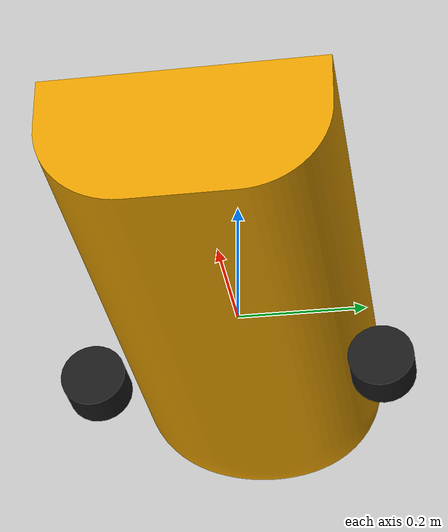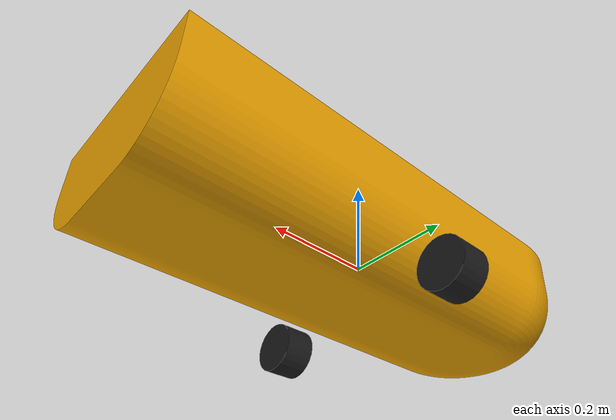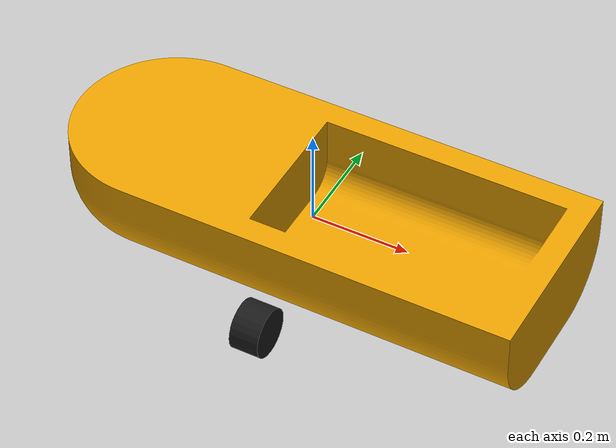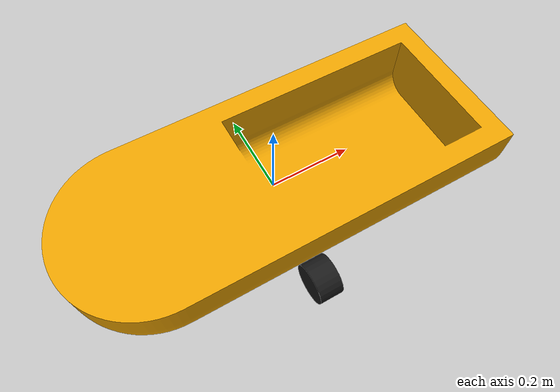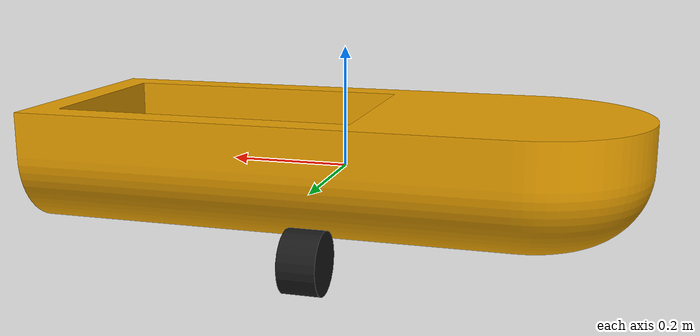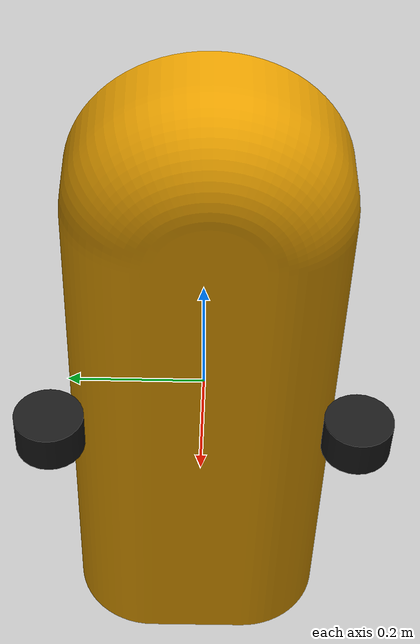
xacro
<?xml version="1.0"?>
<robot name="ele306baat" xmlns:xacro="http://www.ros.org/wiki/xacro">

  <!-- Xacro-parametre (i meter og kg) -->
    <xacro:property name="m" value="30"/>
    <xacro:property name="a" value="1.0"/>  <!-- lengde -->
    <xacro:property name="b" value="0.4"/>  <!-- bredde -->
    <xacro:property name="c" value="0.2"/>  <!-- høyde -->
    <xacro:property name="ox" value="0.5"/>
    <xacro:property name="oy" value="-0.2"/>
    <xacro:property name="oz" value="-0.1"/>
    <xacro:property name="y_off" value="0.22"/>  <!-- avstand sidelengs fra CoM (m) -->
    <xacro:property name="thr_r" value="0.05"/>  <!-- radius på thruster-visual -->
    <xacro:property name="thr_l" value="0.06"/>  <!-- lengde på thruster-visual -->
    <xacro:property name="thr_m" value="0.001"/> <!-- liten masse -->

  <link name="base_link">
    <inertial>
      <origin xyz="0 0 -0.1" rpy="0 0 0"/>
      <mass value="${m}"/>
      <inertia
        ixx="${(1.0/12.0)*m*(b*b + c*c)}"
        iyy="${(1.0/12.0)*m*(a*a + c*c)}"
        izz="${(1.0/12.0)*m*(a*a + b*b)}"
        ixy="0" iyz="0" ixz="0"/>
    </inertial>

    <visual name="base_link_visual">
      <origin xyz="${ox} ${oy} ${oz}" rpy="0 0 0"/>
      <geometry>
        <!-- bruk package:// i ROS 2 -->
        <mesh filename="$(find usv_package)/meshes/base_link.stl" scale="0.001 0.001 0.001"/>
      </geometry>
    </visual>

    <collision name="base_link_collision">
      <origin xyz="${ox} ${oy} ${oz}" rpy="0 0 0"/>
      <geometry>
        <mesh filename="$(find usv_package)/meshes/base_link.stl" scale="0.001 0.001 0.001"/>
      </geometry>
    </collision>
  </link>

  <!-- VENSTRE THRUSTER (y>0) -->
  <link name="thr_left">
    <inertial>
      <origin xyz="0 0 0" rpy="0 0 0"/>
      <mass value="${thr_m}"/>
      <inertia ixx="1e-6" iyy="1e-6" izz="1e-6" ixy="0" ixz="0" iyz="0"/>
    </inertial>
    <visual>
      <!-- URDF-sylinder peker langs z; roter til x -->
      <origin xyz="0 0 0" rpy="0 1.57079632679 0"/>
      <geometry><cylinder radius="${thr_r}" length="${thr_l}"/></geometry>
      <material name="thr_black"><color rgba="0.1 0.1 0.1 1.0"/></material>
    </visual>
    <collision>
      <origin xyz="0 0 0" rpy="0 1.57079632679 0"/>
      <geometry><cylinder radius="${thr_r}" length="${thr_l}"/></geometry>
    </collision>
  </link>

  <!-- HØYRE THRUSTER (y<0) -->
  <link name="thr_right">
    <inertial>
      <origin xyz="0 0 0" rpy="0 0 0"/>
      <mass value="${thr_m}"/>
      <inertia ixx="1e-6" iyy="1e-6" izz="1e-6" ixy="0" ixz="0" iyz="0"/>
    </inertial>
    <visual>
      <origin xyz="0 0 0" rpy="0 1.57079632679 0"/>
      <geometry><cylinder radius="${thr_r}" length="${thr_l}"/></geometry>
      <material name="thr_black"><color rgba="0.1 0.1 0.1 1.0"/></material>
    </visual>
    <collision>
      <origin xyz="0 0 0" rpy="0 1.57079632679 0"/>
      <geometry><cylinder radius="${thr_r}" length="${thr_l}"/></geometry>
    </collision>
  </link>

  <!-- VENSTRE: yaw rundt z, plassert ved (0, +y_off, 0) -->
  <joint name="thr_left_yaw" type="revolute">
    <parent link="base_link"/>
    <child  link="thr_left"/>
    <origin xyz="0 ${y_off} -0.1" rpy="0 0 0"/>
    <axis xyz="0 0 1"/>                       <!-- yaw-akse -->
    <limit lower="-1.5708" upper="1.5708" effort="15.0" velocity="2.5"/>
    <dynamics damping="1" friction="10"/>
  </joint>

  <!-- HØYRE: yaw rundt z, plassert ved (0, -y_off, 0) -->
  <joint name="thr_right_yaw" type="revolute">
    <parent link="base_link"/>
    <child  link="thr_right"/>
    <origin xyz="0 ${-y_off} -0.1" rpy="0 0 0"/>
    <axis xyz="0 0 1"/>
    <limit lower="-1.5708" upper="1.5708"
          effort="15.0" velocity="2.5"/>
    <dynamics damping="1" friction="10"/>
  </joint>

  <!-- Gazebo-tillegg: la Gazebo finne plugin via GAZEBO_PLUGIN_PATH -->
  <gazebo>
    <disableFixedJointLumping>true</disableFixedJointLumping>

    <plugin name="buoyancy" filename="libbuoyancy_plugin.so">
      <fluid_density>1000</fluid_density>
      <surface_z>0.0</surface_z>
      <link name="base_link">
        <waterplane_area>0.4</waterplane_area>
        <height>0.2</height>
        <linear_damping>30.0</linear_damping>
        <angular_damping>30.0</angular_damping>
        <k_righting>50.0</k_righting>
        <cob>
          <x>0</x><y>0</y><z>0.13</z>
        </cob>
      </link>
    </plugin>

  <plugin name="thr_left_force" filename="libgazebo_ros_force.so">
    <ros>
      <namespace>/usv</namespace>
      <remapping>gazebo_ros_force:=/usv/left_thrust</remapping>
    </ros>
    <link_name>thr_left</link_name>
    <force_frame>link</force_frame>   <!-- kraft i thruster-linkens ramme -->
  </plugin>

  <plugin name="thr_right_force" filename="libgazebo_ros_force.so">
    <ros>
      <namespace>/usv</namespace>
      <remapping>gazebo_ros_force:=/usv/right_thrust</remapping>
    </ros>
    <link_name>thr_right</link_name>
    <force_frame>link</force_frame>
  </plugin>

  </gazebo>

  <ros2_control name="usv_hw" type="system">
    <hardware>
      <plugin>gazebo_ros2_control/DefaultSystem</plugin>
    </hardware>

    <!-- Vi styrer yaw-posisjon på begge -->
    <joint name="thr_left_yaw">
      <command_interface name="position"/>
      <state_interface   name="position"/>
      <state_interface   name="velocity"/>
    </joint>
    <joint name="thr_right_yaw">
      <command_interface name="position"/>
      <state_interface   name="position"/>
      <state_interface   name="velocity"/>
    </joint>
  </ros2_control>

</robot>
